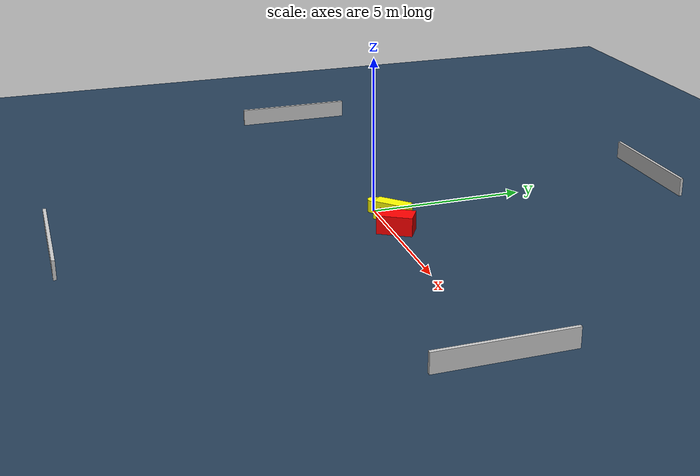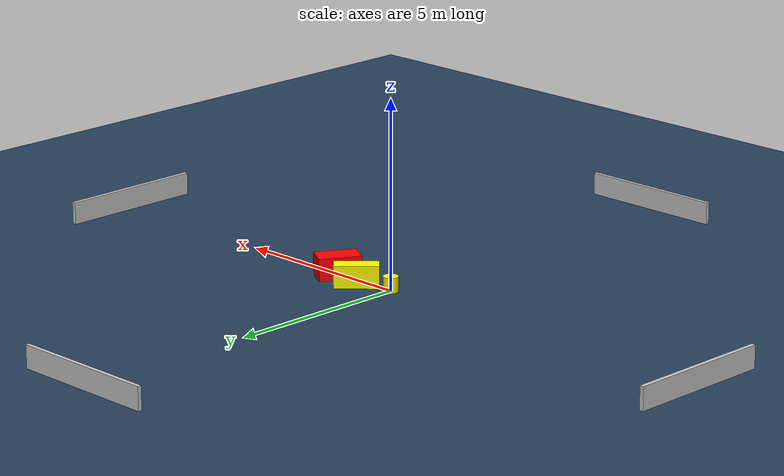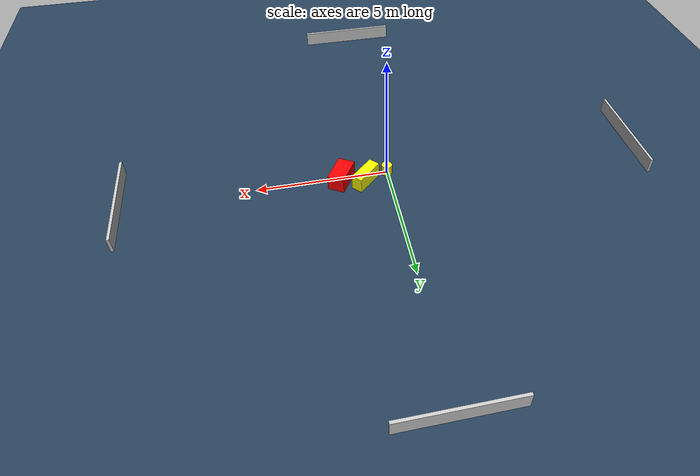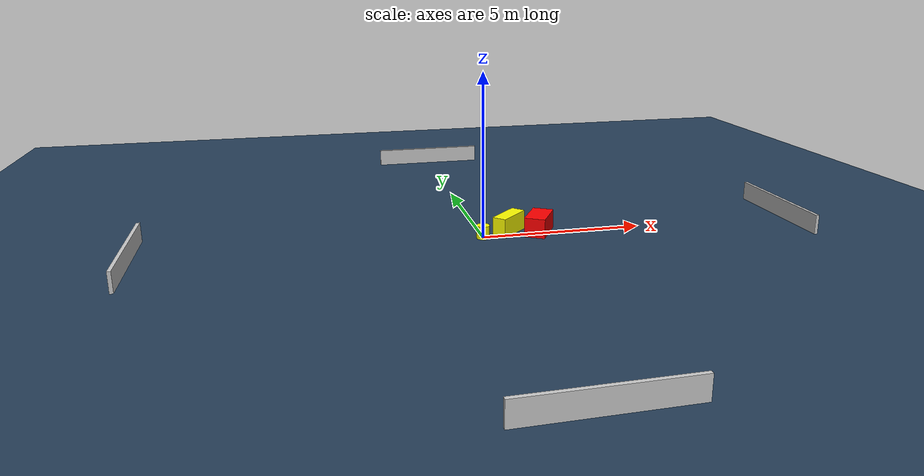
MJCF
<?xml version="1.0" ?>
<mujoco model="generated_environment">
  <option timestep="0.01" integrator="RK4" cone="elliptic"/>
  <default>
    <geom density="1"/>
  </default>
  <asset>
    <texture builtin="gradient" height="3072" name="skybox" rgb1="0.3 0.5 0.7" rgb2="0 0 0" type="skybox" width="512"/>
    <texture builtin="checker" height="300" name="groundplane" rgb1="0.2 0.3 0.4" rgb2="0.1 0.2 0.3" type="2d" width="300"/>
    <material name="groundplane" reflectance="0.2" texrepeat="5 5" texture="groundplane"/>
  </asset>
  <worldbody>
    <light dir="0 0 -1" directional="true" pos="0 0 1.5"/>
    <geom condim="3" friction="0.5 0.005 0.001" material="groundplane" name="floor" pos="0 0 0" size="0 0 0.05" type="plane"/>
    <body name="walls">
      <geom name="wall_1" condim="4" pos="-10.0 0.0 0.3" rgba="0.800000011920929 0.800000011920929 0.800000011920929 1.0" size="0.05 2.0 0.3" type="box"/>
      <geom name="wall_2" condim="4" pos="10.0 0.0 0.3" rgba="0.800000011920929 0.800000011920929 0.800000011920929 1.0" size="0.05 2.0 0.3" type="box"/>
      <geom name="wall_3" condim="4" pos="0.0 -10.0 0.3" rgba="0.800000011920929 0.800000011920929 0.800000011920929 1.0" size="2.0 0.05 0.3" type="box"/>
      <geom name="wall_4" condim="4" pos="0.0 10.0 0.3" rgba="0.800000011920929 0.800000011920929 0.800000011920929 1.0" size="2.0 0.05 0.3" type="box"/>
    </body>
    <body name="robot">
      <joint name="joint_x" type="slide" pos="0 0 0" axis="1 0 0"/>
      <joint name="joint_y" type="slide" pos="0 0 0" axis="0 1 0"/>
      <geom name="robot" type="cylinder" pos="0.0 0.0 0.2" size="0.2 0.2 0.0" mass="5.0" friction="1.0 0.005 0.0001" condim="4" rgba="1.0 1.0 0.0 1.0"/>
    </body>
    <body name="obstacle_1_movable">
      <geom name="obstacle_1_movable" condim="4" pos="0.8881628082039721 0.3313407213866959 0.3" euler="0 0 223.9724346254674" friction="0.0 0.005 0.001" rgba="1.0 1.0 0.0 1.0" size="0.5783150647645278 0.21956812505370238 0.3" type="box" mass="0.1"/>
      <joint type="free"/>
    </body>
    <body name="obstacle_2_static">
      <geom name="obstacle_2_static" condim="4" pos="1.7902639887265879 0.11813849790738955 0.3" euler="0 0 329.2253131406689" friction="0.0 0.005 0.001" rgba="1.0 0.0 0.0 1.0" size="0.32100580130986817 0.560565579192916 0.3" type="box"/>
    </body>
  </worldbody>
  <actuator>
    <motor name="actuator_x" joint="joint_x" gear="1" ctrlrange="-1 1"/>
    <motor name="actuator_y" joint="joint_y" gear="1" ctrlrange="-1 1"/>
  </actuator>
</mujoco>
